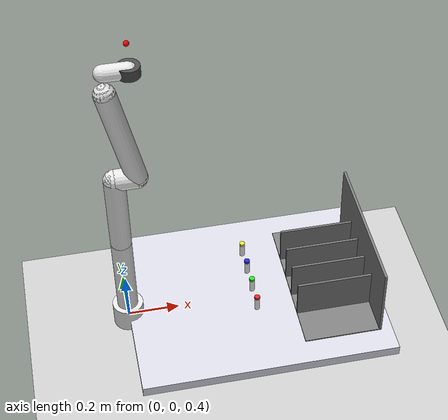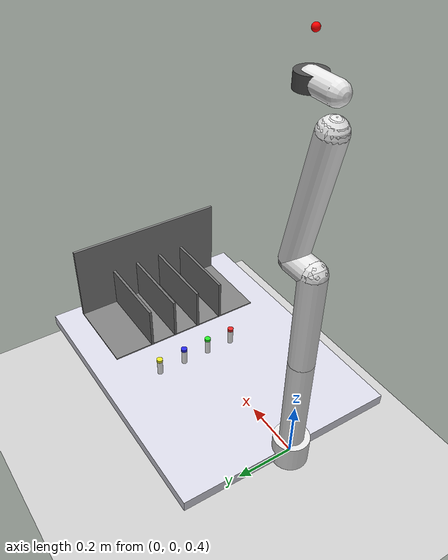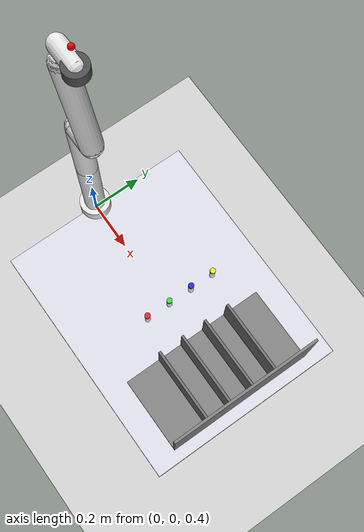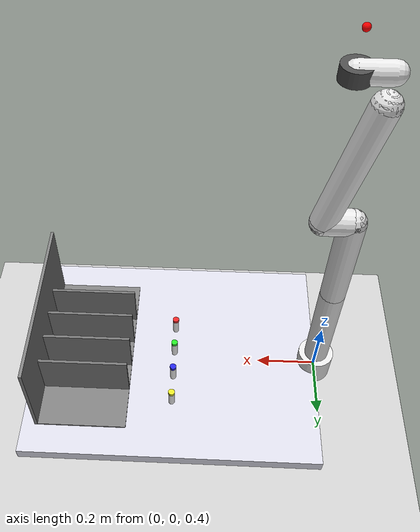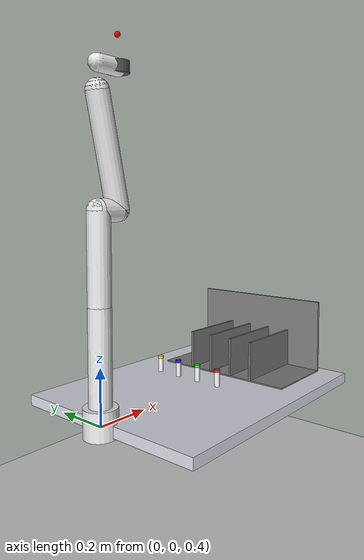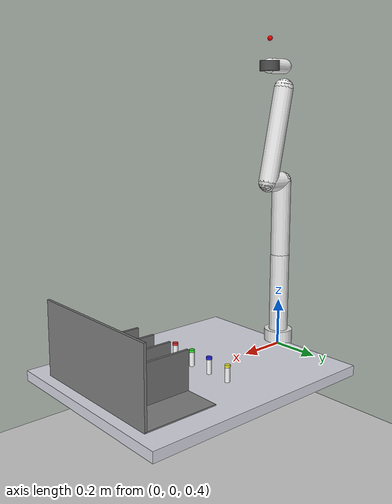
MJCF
<!--
  S5 Pharma Logistics scene for PSL-Bench.
  Panda arm + storage shelf (3 slots) + 4 vials (freejoint cylinders with different colors).
  Frame convention: z-up, SI units (metres, radians, kg).
-->
<mujoco model="s5_pharma_logistics">
  <option timestep="0.002" gravity="0 0 -9.81"/>
  <compiler angle="radian"/>

  <default>
    <joint damping="1.0" armature="0.1"/>
    <geom condim="4" friction="1 0.5 0.01"/>
  </default>

  <worldbody>
    <!-- Ground plane -->
    <geom name="floor" type="plane" size="2 2 0.1" rgba="0.8 0.8 0.8 1"/>

    <!-- Work table -->
    <body name="table" pos="0.5 0 0.4">
      <geom name="table_top" type="box" size="0.5 0.4 0.02" rgba="0.85 0.85 0.9 1" mass="10"/>
    </body>

    <!-- Panda arm base -->
    <body name="panda_link0" pos="0 0 0.42">
      <geom name="link0_geom" type="cylinder" size="0.06 0.05" rgba="0.9 0.9 0.9 1" mass="2.0"/>
      <body name="panda_link1" pos="0 0 0.05">
        <joint name="joint_0" type="hinge" axis="0 0 1" range="-2.8973 2.8973" damping="10"/>
        <geom name="link1_geom" type="capsule" fromto="0 0 0 0 0 0.333" size="0.04" rgba="0.9 0.9 0.9 1" mass="2.0"/>
        <body name="panda_link2" pos="0 0 0.333">
          <joint name="joint_1" type="hinge" axis="0 1 0" range="-1.7628 1.7628" damping="10"/>
          <geom name="link2_geom" type="capsule" fromto="0 0 0 0 0 0.316" size="0.04" rgba="0.9 0.9 0.9 1" mass="2.0"/>
          <body name="panda_link3" pos="0 0 0.316">
            <joint name="joint_2" type="hinge" axis="0 0 1" range="-2.8973 2.8973" damping="10"/>
            <geom name="link3_geom" type="capsule" fromto="0 0 0 0.0825 0 0" size="0.04" rgba="0.9 0.9 0.9 1" mass="2.0"/>
            <body name="panda_link4" pos="0.0825 0 0">
              <joint name="joint_3" type="hinge" axis="0 -1 0" range="-3.0718 -0.0698" damping="10"/>
              <geom name="link4_geom" type="capsule" fromto="0 0 0 -0.0825 0 0.384" size="0.04" rgba="0.9 0.9 0.9 1" mass="2.0"/>
              <body name="panda_link5" pos="-0.0825 0 0.384">
                <joint name="joint_4" type="hinge" axis="0 0 1" range="-2.8973 2.8973" damping="10"/>
                <geom name="link5_geom" type="sphere" size="0.04" rgba="0.9 0.9 0.9 1" mass="1.0"/>
                <body name="panda_link6" pos="0 0 0.088">
                  <joint name="joint_5" type="hinge" axis="0 1 0" range="-0.0175 3.7525" damping="5"/>
                  <geom name="link6_geom" type="capsule" fromto="0 0 0 0.088 0 0" size="0.03" rgba="0.9 0.9 0.9 1" mass="1.0"/>
                  <body name="panda_link7" pos="0.088 0 0">
                    <joint name="joint_6" type="hinge" axis="0 0 1" range="-2.8973 2.8973" damping="2"/>
                    <geom name="link7_geom" type="cylinder" size="0.04 0.02" rgba="0.3 0.3 0.3 1" mass="0.5"/>
                    <site name="ee_site" pos="0 0 0.107" size="0.01" rgba="1 0 0 1"/>
                  </body>
                </body>
              </body>
            </body>
          </body>
        </body>
      </body>
    </body>

    <!-- Storage shelf (3 slots) -->
    <body name="shelf" pos="0.8 0 0.42">
      <!-- Shelf base -->
      <geom name="shelf_base" type="box" size="0.15 0.3 0.005" rgba="0.5 0.5 0.5 1" mass="3.0"/>
      <!-- Shelf back wall -->
      <geom name="shelf_back" type="box" pos="0.15 0 0.15" size="0.005 0.3 0.15" rgba="0.5 0.5 0.5 1" mass="1.0"/>
      <!-- Slot dividers -->
      <geom name="shelf_div_1" type="box" pos="0 -0.15 0.08" size="0.15 0.005 0.08" rgba="0.45 0.45 0.45 1" mass="0.3"/>
      <geom name="shelf_div_2" type="box" pos="0 -0.05 0.08" size="0.15 0.005 0.08" rgba="0.45 0.45 0.45 1" mass="0.3"/>
      <geom name="shelf_div_3" type="box" pos="0 0.05 0.08" size="0.15 0.005 0.08" rgba="0.45 0.45 0.45 1" mass="0.3"/>
      <geom name="shelf_div_4" type="box" pos="0 0.15 0.08" size="0.15 0.005 0.08" rgba="0.45 0.45 0.45 1" mass="0.3"/>
    </body>

    <!-- Vial 1 (red label) -->
    <body name="vial_1" pos="0.5 -0.1 0.46">
      <freejoint name="vial1_free"/>
      <geom name="vial1_body" type="cylinder" size="0.01 0.03" rgba="0.95 0.95 0.95 1" mass="0.015"/>
      <geom name="vial1_cap" type="cylinder" pos="0 0 0.032" size="0.011 0.005" rgba="0.9 0.15 0.15 1" mass="0.003"/>
    </body>

    <!-- Vial 2 (green label) -->
    <body name="vial_2" pos="0.5 0 0.46">
      <freejoint name="vial2_free"/>
      <geom name="vial2_body" type="cylinder" size="0.01 0.03" rgba="0.95 0.95 0.95 1" mass="0.015"/>
      <geom name="vial2_cap" type="cylinder" pos="0 0 0.032" size="0.011 0.005" rgba="0.15 0.9 0.15 1" mass="0.003"/>
    </body>

    <!-- Vial 3 (blue label) -->
    <body name="vial_3" pos="0.5 0.1 0.46">
      <freejoint name="vial3_free"/>
      <geom name="vial3_body" type="cylinder" size="0.01 0.03" rgba="0.95 0.95 0.95 1" mass="0.015"/>
      <geom name="vial3_cap" type="cylinder" pos="0 0 0.032" size="0.011 0.005" rgba="0.15 0.15 0.9 1" mass="0.003"/>
    </body>

    <!-- Vial 4 (yellow label) -->
    <body name="vial_4" pos="0.5 0.2 0.46">
      <freejoint name="vial4_free"/>
      <geom name="vial4_body" type="cylinder" size="0.01 0.03" rgba="0.95 0.95 0.95 1" mass="0.015"/>
      <geom name="vial4_cap" type="cylinder" pos="0 0 0.032" size="0.011 0.005" rgba="0.9 0.9 0.15 1" mass="0.003"/>
    </body>
  </worldbody>

  <actuator>
    <position name="act_joint_0" joint="joint_0" kp="1000"/>
    <position name="act_joint_1" joint="joint_1" kp="1000"/>
    <position name="act_joint_2" joint="joint_2" kp="1000"/>
    <position name="act_joint_3" joint="joint_3" kp="1000"/>
    <position name="act_joint_4" joint="joint_4" kp="1000"/>
    <position name="act_joint_5" joint="joint_5" kp="1000"/>
    <position name="act_joint_6" joint="joint_6" kp="1000"/>
  </actuator>

  <sensor>
    <jointpos name="jpos_0" joint="joint_0"/>
    <jointpos name="jpos_1" joint="joint_1"/>
    <jointpos name="jpos_2" joint="joint_2"/>
    <jointpos name="jpos_3" joint="joint_3"/>
    <jointpos name="jpos_4" joint="joint_4"/>
    <jointpos name="jpos_5" joint="joint_5"/>
    <jointpos name="jpos_6" joint="joint_6"/>
    <jointvel name="jvel_0" joint="joint_0"/>
    <jointvel name="jvel_1" joint="joint_1"/>
    <jointvel name="jvel_2" joint="joint_2"/>
    <jointvel name="jvel_3" joint="joint_3"/>
    <jointvel name="jvel_4" joint="joint_4"/>
    <jointvel name="jvel_5" joint="joint_5"/>
    <jointvel name="jvel_6" joint="joint_6"/>
    <framepos name="ee_pos" objtype="site" objname="ee_site"/>
    <framequat name="ee_quat" objtype="site" objname="ee_site"/>
  </sensor>
</mujoco>
